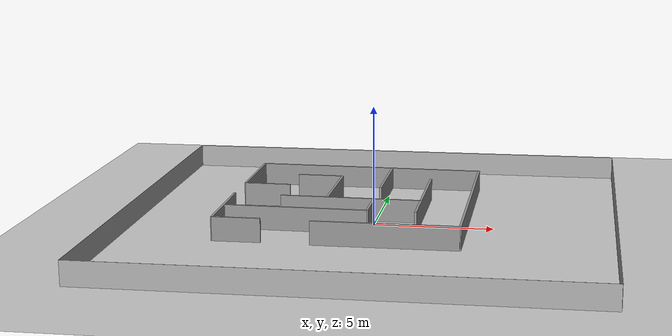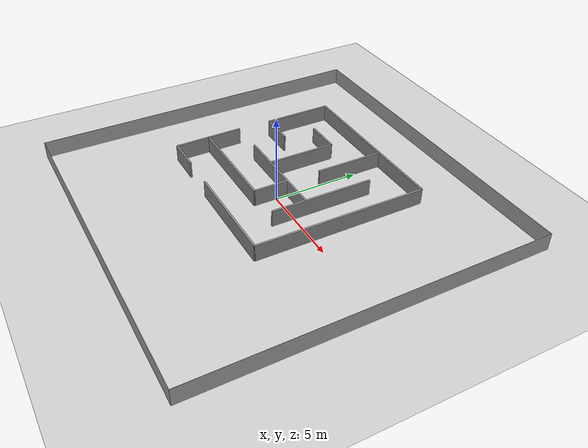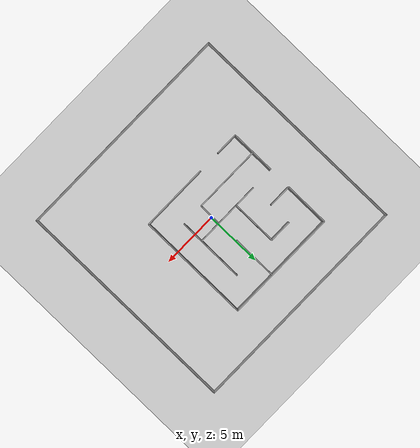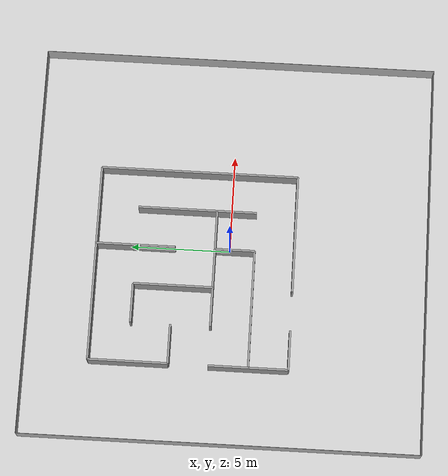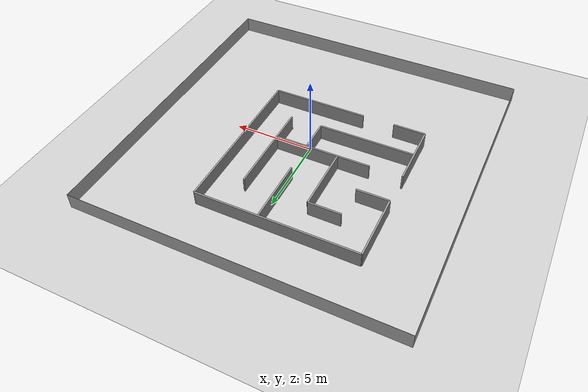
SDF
<sdf version="1.10">
 <world name="default">
  <physics type="ode">
   <max_step_size>0.0040000000000000001</max_step_size>
   <real_time_factor>1</real_time_factor>
   <real_time_update_rate>250</real_time_update_rate>
  </physics>
  <plugin name="gz::sim::systems::Physics" filename="gz-sim-physics-system"/>
  <plugin name="gz::sim::systems::UserCommands" filename="gz-sim-user-commands-system"/>
  <plugin name="gz::sim::systems::SceneBroadcaster" filename="gz-sim-scene-broadcaster-system"/>
  <plugin name="gz::sim::systems::Contact" filename="gz-sim-contact-system"/>
  <plugin name="gz::sim::systems::Imu" filename="gz-sim-imu-system"/>
  <plugin name="gz::sim::systems::Magnetometer" filename="gz-sim-magnetometer-system"/>
  <plugin name="gz::sim::systems::Altimeter" filename="gz-sim-altimeter-system"/>
  <plugin name="gz::sim::systems::NavSat" filename="gz-sim-navsat-system"/>
  <plugin name="gz::sim::systems::Sensors" filename="gz-sim-sensors-system">
   <render_engine>ogre2</render_engine>
  </plugin>
  <gravity>0 0 -9.8000000000000007</gravity>
  <magnetic_field>6.0000000000000002e-06 2.3e-05 -4.1999999999999998e-05</magnetic_field>
  <atmosphere type="adiabatic"/>
  <spherical_coordinates>
   <surface_model>EARTH_WGS84</surface_model>
   <latitude_deg>39.79480109851339</latitude_deg>
   <longitude_deg>-84.08631702793322</longitude_deg>
   <elevation>265.2</elevation>
   <heading_deg>0</heading_deg>
  </spherical_coordinates>
  <scene>
   <grid>true</grid>
   <ambient>0.400000006 0.400000006 0.400000006 1</ambient>
   <background>0.699999988 0.699999988 0.699999988 1</background>
   <shadows>false</shadows>
  </scene>
  <light name="sunUTC" type="directional">
   <pose>0 0 500 0 0 0</pose>
   <cast_shadows>false</cast_shadows>
   <intensity>1</intensity>
   <direction>0.001 0.625 -0.78000000000000003</direction>
   <diffuse>0.903999984 0.903999984 0.903999984 1</diffuse>
   <specular>0.270999998 0.270999998 0.270999998 1</specular>
   <attenuation><range>2000</range><linear>0</linear><constant>1</constant><quadratic>0</quadratic></attenuation>
   <spot><inner_angle>0</inner_angle><outer_angle>0</outer_angle><falloff>0</falloff></spot>
  </light>
  <model name="ground_plane">
   <static>true</static>
   <link name="link">
    <collision name="collision">
     <geometry><plane><normal>0 0 1</normal><size>1 1</size></plane></geometry>
    </collision>
    <visual name="visual">
     <geometry><plane><normal>0 0 1</normal><size>100 100</size></plane></geometry>
     <material>
      <ambient>0.800000012 0.800000012 0.800000012 1</ambient>
      <diffuse>0.800000012 0.800000012 0.800000012 1</diffuse>
      <specular>0.800000012 0.800000012 0.800000012 1</specular>
     </material>
    </visual>
    <inertial>
     <mass>1</mass>
     <inertia><ixx>1</ixx><ixy>0</ixy><ixz>0</ixz><iyy>1</iyy><iyz>0</iyz><izz>1</izz></inertia>
    </inertial>
   </link>
  </model>
  <model name="wall_1">
   <pose>-10 0 .5 0 0 -1.57</pose>
   <static>true</static>
   <link name="link">
    <collision name="collision"><geometry><box><size>20 .01 1</size></box></geometry></collision>
    <visual name="visual">
     <geometry><box><size>20 .01 1</size></box></geometry>
     <material>
      <ambient>0.7 0.7 0.7 1</ambient>
      <diffuse>0.7 0.7 0.7 1</diffuse>
      <specular>0.7 0.7 0.7 1</specular>
     </material>
    </visual>
    <inertial>
     <mass>1</mass>
     <inertia><ixx>1</ixx><ixy>0</ixy><ixz>0</ixz><iyy>1</iyy><iyz>0</iyz><izz>1</izz></inertia>
    </inertial>
   </link>
  </model>
  <model name="wall_2">
   <pose>10 0 .5 0 0 -1.57</pose>
   <static>true</static>
   <link name="link">
    <collision name="collision"><geometry><box><size>20 .01 1</size></box></geometry></collision>
    <visual name="visual">
     <geometry><box><size>20 .01 1</size></box></geometry>
     <material>
      <ambient>0.7 0.7 0.7 1</ambient>
      <diffuse>0.7 0.7 0.7 1</diffuse>
      <specular>0.7 0.7 0.7 1</specular>
     </material>
    </visual>
    <inertial>
     <mass>1</mass>
     <inertia><ixx>1</ixx><ixy>0</ixy><ixz>0</ixz><iyy>1</iyy><iyz>0</iyz><izz>1</izz></inertia>
    </inertial>
   </link>
  </model>
  <model name="wall_3">
   <pose>0 10 .5 0 0 0</pose>
   <static>true</static>
   <link name="link">
    <collision name="collision"><geometry><box><size>20 .01 1</size></box></geometry></collision>
    <visual name="visual">
     <geometry><box><size>20 .01 1</size></box></geometry>
     <material>
      <ambient>0.7 0.7 0.7 1</ambient>
      <diffuse>0.7 0.7 0.7 1</diffuse>
      <specular>0.7 0.7 0.7 1</specular>
     </material>
    </visual>
    <inertial>
     <mass>1</mass>
     <inertia><ixx>1</ixx><ixy>0</ixy><ixz>0</ixz><iyy>1</iyy><iyz>0</iyz><izz>1</izz></inertia>
    </inertial>
   </link>
  </model>
  <model name="wall_4">
   <pose>0 -10 .5 0 0 0</pose>
   <static>true</static>
   <link name="link">
    <collision name="collision"><geometry><box><size>20 .01 1</size></box></geometry></collision>
    <visual name="visual">
     <geometry><box><size>20 .01 1</size></box></geometry>
     <material>
      <ambient>0.7 0.7 0.7 1</ambient>
      <diffuse>0.7 0.7 0.7 1</diffuse>
      <specular>0.7 0.7 0.7 1</specular>
     </material>
    </visual>
    <inertial>
     <mass>1</mass>
     <inertia><ixx>1</ixx><ixy>0</ixy><ixz>0</ixz><iyy>1</iyy><iyz>0</iyz><izz>1</izz></inertia>
    </inertial>
   </link>
  </model>
  <model name="s_maze">
   <link name="link_0_clone">
    <inertial>
     <mass>2000</mass>
     <inertia><ixx>16833.3</ixx><ixy>0</ixy><ixz>0</ixz><iyy>168.333</iyy><iyz>0</iyz><izz>16668.3</izz></inertia>
    </inertial>
    <pose>5 0 0 0 -0 0</pose>
    <visual name="visual">
     <geometry><box><size>0.1 10 1</size></box></geometry>
     <material>
      <lighting>1</lighting>
      <script><uri>file://media/materials/scripts/gazebo.material</uri><name>Gazebo/Grey</name></script>
      <shader type="vertex"><normal_map>__default__</normal_map></shader>
      <ambient>0.3 0.3 0.3 1</ambient>
      <diffuse>0.7 0.7 0.7 1</diffuse>
      <specular>0.01 0.01 0.01 1</specular>
      <emissive>0 0 0 1</emissive>
     </material>
    </visual>
    <collision name="collision">
     <geometry><box><size>0.1 10 1</size></box></geometry>
     <surface>
      <friction>
       <ode><mu>1</mu><mu2>1</mu2><fdir1>0 0 0</fdir1><slip1>0</slip1><slip2>0</slip2></ode>
       <torsional>
        <coefficient>1</coefficient>
        <patch_radius>0</patch_radius>
        <surface_radius>0</surface_radius>
        <use_patch_radius>1</use_patch_radius>
        <ode><slip>0</slip></ode>
       </torsional>
      </friction>
      <bounce><restitution_coefficient>0</restitution_coefficient><threshold>1e+06</threshold></bounce>
      <contact>
       <collide_without_contact>0</collide_without_contact>
       <collide_without_contact_bitmask>1</collide_without_contact_bitmask>
       <collide_bitmask>1</collide_bitmask>
       <ode>
        <soft_cfm>0</soft_cfm>
        <soft_erp>0.2</soft_erp>
        <kp>1e+13</kp>
        <kd>1</kd>
        <max_vel>0.01</max_vel>
        <min_depth>0</min_depth>
       </ode>
       <bullet>
        <split_impulse>1</split_impulse>
        <split_impulse_penetration_threshold>-0.01</split_impulse_penetration_threshold>
        <soft_cfm>0</soft_cfm>
        <soft_erp>0.2</soft_erp>
        <kp>1e+13</kp>
        <kd>1</kd>
       </bullet>
      </contact>
     </surface>
    </collision>
   </link>
   <link name="link_0_clone_0_clone">
    <inertial>
     <mass>400</mass>
     <inertia><ixx>166.667</ixx><ixy>0</ixy><ixz>0</ixz><iyy>33.6667</iyy><iyz>0</iyz><izz>133.667</izz></inertia>
    </inertial>
    <pose>1 -2 -0 0 -0 0</pose>
    <visual name="visual">
     <geometry><box><size>0.1 2 1</size></box></geometry>
     <material>
      <lighting>1</lighting>
      <script><uri>file://media/materials/scripts/gazebo.material</uri><name>Gazebo/Grey</name></script>
      <shader type="vertex"><normal_map>__default__</normal_map></shader>
      <ambient>0.3 0.3 0.3 1</ambient>
      <diffuse>0.7 0.7 0.7 1</diffuse>
      <specular>0.01 0.01 0.01 1</specular>
      <emissive>0 0 0 1</emissive>
     </material>
    </visual>
    <collision name="collision">
     <geometry><box><size>0.1 2 1</size></box></geometry>
     <surface>
      <friction>
       <ode><mu>1</mu><mu2>1</mu2><fdir1>0 0 0</fdir1><slip1>0</slip1><slip2>0</slip2></ode>
       <torsional>
        <coefficient>1</coefficient>
        <patch_radius>0</patch_radius>
        <surface_radius>0</surface_radius>
        <use_patch_radius>1</use_patch_radius>
        <ode><slip>0</slip></ode>
       </torsional>
      </friction>
      <bounce><restitution_coefficient>0</restitution_coefficient><threshold>1e+06</threshold></bounce>
      <contact>
       <collide_without_contact>0</collide_without_contact>
       <collide_without_contact_bitmask>1</collide_without_contact_bitmask>
       <collide_bitmask>1</collide_bitmask>
       <ode>
        <soft_cfm>0</soft_cfm>
        <soft_erp>0.2</soft_erp>
        <kp>1e+13</kp>
        <kd>1</kd>
        <max_vel>0.01</max_vel>
        <min_depth>0</min_depth>
       </ode>
       <bullet>
        <split_impulse>1</split_impulse>
        <split_impulse_penetration_threshold>-0.01</split_impulse_penetration_threshold>
        <soft_cfm>0</soft_cfm>
        <soft_erp>0.2</soft_erp>
        <kp>1e+13</kp>
        <kd>1</kd>
       </bullet>
      </contact>
     </surface>
    </collision>
   </link>
   <link name="link_0_clone_1_clone">
    <inertial>
     <mass>2000</mass>
     <inertia><ixx>16833.3</ixx><ixy>0</ixy><ixz>0</ixz><iyy>168.333</iyy><iyz>0</iyz><izz>16668.3</izz></inertia>
    </inertial>
    <pose>-0 5 -0 0 -0 1.5708</pose>
    <visual name="visual">
     <geometry><box><size>0.1 10 1</size></box></geometry>
     <material>
      <lighting>1</lighting>
      <script><uri>file://media/materials/scripts/gazebo.material</uri><name>Gazebo/Grey</name></script>
      <shader type="vertex"><normal_map>__default__</normal_map></shader>
      <ambient>0.3 0.3 0.3 1</ambient>
      <diffuse>0.7 0.7 0.7 1</diffuse>
      <specular>0.01 0.01 0.01 1</specular>
      <emissive>0 0 0 1</emissive>
     </material>
    </visual>
    <collision name="collision">
     <geometry><box><size>0.1 10 1</size></box></geometry>
     <surface>
      <friction>
       <ode><mu>1</mu><mu2>1</mu2><fdir1>0 0 0</fdir1><slip1>0</slip1><slip2>0</slip2></ode>
       <torsional>
        <coefficient>1</coefficient>
        <patch_radius>0</patch_radius>
        <surface_radius>0</surface_radius>
        <use_patch_radius>1</use_patch_radius>
        <ode><slip>0</slip></ode>
       </torsional>
      </friction>
      <bounce><restitution_coefficient>0</restitution_coefficient><threshold>1e+06</threshold></bounce>
      <contact>
       <collide_without_contact>0</collide_without_contact>
       <collide_without_contact_bitmask>1</collide_without_contact_bitmask>
       <collide_bitmask>1</collide_bitmask>
       <ode>
        <soft_cfm>0</soft_cfm>
        <soft_erp>0.2</soft_erp>
        <kp>1e+13</kp>
        <kd>1</kd>
        <max_vel>0.01</max_vel>
        <min_depth>0</min_depth>
       </ode>
       <bullet>
        <split_impulse>1</split_impulse>
        <split_impulse_penetration_threshold>-0.01</split_impulse_penetration_threshold>
        <soft_cfm>0</soft_cfm>
        <soft_erp>0.2</soft_erp>
        <kp>1e+13</kp>
        <kd>1</kd>
       </bullet>
      </contact>
     </surface>
    </collision>
   </link>
   <link name="link_0_clone_1_clone_0">
    <inertial>
     <mass>1200</mass>
     <inertia><ixx>3700</ixx><ixy>0</ixy><ixz>0</ixz><iyy>101</iyy><iyz>0</iyz><izz>3601</izz></inertia>
    </inertial>
    <pose>-2 -3 -0 0 -0 1.5708</pose>
    <visual name="visual">
     <geometry><box><size>0.1 6 1</size></box></geometry>
     <material>
      <lighting>1</lighting>
      <script><uri>file://media/materials/scripts/gazebo.material</uri><name>Gazebo/Grey</name></script>
      <shader type="vertex"><normal_map>__default__</normal_map></shader>
      <ambient>0.3 0.3 0.3 1</ambient>
      <diffuse>0.7 0.7 0.7 1</diffuse>
      <specular>0.01 0.01 0.01 1</specular>
      <emissive>0 0 0 1</emissive>
     </material>
    </visual>
    <collision name="collision">
     <geometry><box><size>0.1 6 1</size></box></geometry>
     <surface>
      <friction>
       <ode><mu>1</mu><mu2>1</mu2><fdir1>0 0 0</fdir1><slip1>0</slip1><slip2>0</slip2></ode>
       <torsional>
        <coefficient>1</coefficient>
        <patch_radius>0</patch_radius>
        <surface_radius>0</surface_radius>
        <use_patch_radius>1</use_patch_radius>
        <ode><slip>0</slip></ode>
       </torsional>
      </friction>
      <bounce><restitution_coefficient>0</restitution_coefficient><threshold>1e+06</threshold></bounce>
      <contact>
       <collide_without_contact>0</collide_without_contact>
       <collide_without_contact_bitmask>1</collide_without_contact_bitmask>
       <collide_bitmask>1</collide_bitmask>
       <ode>
        <soft_cfm>0</soft_cfm>
        <soft_erp>0.2</soft_erp>
        <kp>1e+13</kp>
        <kd>1</kd>
        <max_vel>0.01</max_vel>
        <min_depth>0</min_depth>
       </ode>
       <bullet>
        <split_impulse>1</split_impulse>
        <split_impulse_penetration_threshold>-0.01</split_impulse_penetration_threshold>
        <soft_cfm>0</soft_cfm>
        <soft_erp>0.2</soft_erp>
        <kp>1e+13</kp>
        <kd>1</kd>
       </bullet>
      </contact>
     </surface>
    </collision>
   </link>
   <link name="link_0_clone_1_clone_0_clone">
    <inertial>
     <mass>1200</mass>
     <inertia><ixx>3700</ixx><ixy>0</ixy><ixz>0</ixz><iyy>101</iyy><iyz>0</iyz><izz>3601</izz></inertia>
    </inertial>
    <pose>-0 -1 0 0 -0 1.5708</pose>
    <visual name="visual">
     <geometry><box><size>0.1 6 1</size></box></geometry>
     <material>
      <lighting>1</lighting>
      <script><uri>file://media/materials/scripts/gazebo.material</uri><name>Gazebo/Grey</name></script>
      <shader type="vertex"><normal_map>__default__</normal_map></shader>
      <ambient>0.3 0.3 0.3 1</ambient>
      <diffuse>0.7 0.7 0.7 1</diffuse>
      <specular>0.01 0.01 0.01 1</specular>
      <emissive>0 0 0 1</emissive>
     </material>
    </visual>
    <collision name="collision">
     <geometry><box><size>0.1 6 1</size></box></geometry>
     <surface>
      <friction>
       <ode><mu>1</mu><mu2>1</mu2><fdir1>0 0 0</fdir1><slip1>0</slip1><slip2>0</slip2></ode>
       <torsional>
        <coefficient>1</coefficient>
        <patch_radius>0</patch_radius>
        <surface_radius>0</surface_radius>
        <use_patch_radius>1</use_patch_radius>
        <ode><slip>0</slip></ode>
       </torsional>
      </friction>
      <bounce><restitution_coefficient>0</restitution_coefficient><threshold>1e+06</threshold></bounce>
      <contact>
       <collide_without_contact>0</collide_without_contact>
       <collide_without_contact_bitmask>1</collide_without_contact_bitmask>
       <collide_bitmask>1</collide_bitmask>
       <ode>
        <soft_cfm>0</soft_cfm>
        <soft_erp>0.2</soft_erp>
        <kp>1e+13</kp>
        <kd>1</kd>
        <max_vel>0.01</max_vel>
        <min_depth>0</min_depth>
       </ode>
       <bullet>
        <split_impulse>1</split_impulse>
        <split_impulse_penetration_threshold>-0.01</split_impulse_penetration_threshold>
        <soft_cfm>0</soft_cfm>
        <soft_erp>0.2</soft_erp>
        <kp>1e+13</kp>
        <kd>1</kd>
       </bullet>
      </contact>
     </surface>
    </collision>
   </link>
   <link name="link_0_clone_1_clone_0_clone_0">
    <inertial>
     <mass>1200</mass>
     <inertia><ixx>3700</ixx><ixy>0</ixy><ixz>0</ixz><iyy>101</iyy><iyz>0</iyz><izz>3601</izz></inertia>
    </inertial>
    <pose>2 -5 0 -0.004588 -0.005224 1.5715</pose>
    <visual name="visual">
     <geometry><box><size>0.1 6 1</size></box></geometry>
     <material>
      <lighting>1</lighting>
      <script><uri>file://media/materials/scripts/gazebo.material</uri><name>Gazebo/Grey</name></script>
      <shader type="vertex"><normal_map>__default__</normal_map></shader>
      <ambient>0.3 0.3 0.3 1</ambient>
      <diffuse>0.7 0.7 0.7 1</diffuse>
      <specular>0.01 0.01 0.01 1</specular>
      <emissive>0 0 0 1</emissive>
     </material>
    </visual>
    <collision name="collision">
     <geometry><box><size>0.1 6 1</size></box></geometry>
     <surface>
      <friction>
       <ode><mu>1</mu><mu2>1</mu2><fdir1>0 0 0</fdir1><slip1>0</slip1><slip2>0</slip2></ode>
       <torsional>
        <coefficient>1</coefficient>
        <patch_radius>0</patch_radius>
        <surface_radius>0</surface_radius>
        <use_patch_radius>1</use_patch_radius>
        <ode><slip>0</slip></ode>
       </torsional>
      </friction>
      <bounce><restitution_coefficient>0</restitution_coefficient><threshold>1e+06</threshold></bounce>
      <contact>
       <collide_without_contact>0</collide_without_contact>
       <collide_without_contact_bitmask>1</collide_without_contact_bitmask>
       <collide_bitmask>1</collide_bitmask>
       <ode>
        <soft_cfm>0</soft_cfm>
        <soft_erp>0.2</soft_erp>
        <kp>1e+13</kp>
        <kd>1</kd>
        <max_vel>0.01</max_vel>
        <min_depth>0</min_depth>
       </ode>
       <bullet>
        <split_impulse>1</split_impulse>
        <split_impulse_penetration_threshold>-0.01</split_impulse_penetration_threshold>
        <soft_cfm>0</soft_cfm>
        <soft_erp>0.2</soft_erp>
        <kp>1e+13</kp>
        <kd>1</kd>
       </bullet>
      </contact>
     </surface>
    </collision>
   </link>
   <link name="link_0_clone_1_clone_0_clone_clone">
    <inertial>
     <mass>400</mass>
     <inertia><ixx>166.667</ixx><ixy>0</ixy><ixz>0</ixz><iyy>33.6667</iyy><iyz>0</iyz><izz>133.667</izz></inertia>
    </inertial>
    <pose>-2 3 -0 0 -0 1.5708</pose>
    <visual name="visual">
     <geometry><box><size>0.1 2 1</size></box></geometry>
     <material>
      <lighting>1</lighting>
      <script><uri>file://media/materials/scripts/gazebo.material</uri><name>Gazebo/Grey</name></script>
      <shader type="vertex"><normal_map>__default__</normal_map></shader>
      <ambient>0.3 0.3 0.3 1</ambient>
      <diffuse>0.7 0.7 0.7 1</diffuse>
      <specular>0.01 0.01 0.01 1</specular>
      <emissive>0 0 0 1</emissive>
     </material>
    </visual>
    <collision name="collision">
     <geometry><box><size>0.1 2 1</size></box></geometry>
     <surface>
      <friction>
       <ode><mu>1</mu><mu2>1</mu2><fdir1>0 0 0</fdir1><slip1>0</slip1><slip2>0</slip2></ode>
       <torsional>
        <coefficient>1</coefficient>
        <patch_radius>0</patch_radius>
        <surface_radius>0</surface_radius>
        <use_patch_radius>1</use_patch_radius>
        <ode><slip>0</slip></ode>
       </torsional>
      </friction>
      <bounce><restitution_coefficient>0</restitution_coefficient><threshold>1e+06</threshold></bounce>
      <contact>
       <collide_without_contact>0</collide_without_contact>
       <collide_without_contact_bitmask>1</collide_without_contact_bitmask>
       <collide_bitmask>1</collide_bitmask>
       <ode>
        <soft_cfm>0</soft_cfm>
        <soft_erp>0.2</soft_erp>
        <kp>1e+13</kp>
        <kd>1</kd>
        <max_vel>0.01</max_vel>
        <min_depth>0</min_depth>
       </ode>
       <bullet>
        <split_impulse>1</split_impulse>
        <split_impulse_penetration_threshold>-0.01</split_impulse_penetration_threshold>
        <soft_cfm>0</soft_cfm>
        <soft_erp>0.2</soft_erp>
        <kp>1e+13</kp>
        <kd>1</kd>
       </bullet>
      </contact>
     </surface>
    </collision>
   </link>
   <link name="link_0_clone_1_clone_0_clone_clone_clone">
    <inertial>
     <mass>400</mass>
     <inertia><ixx>166.667</ixx><ixy>0</ixy><ixz>0</ixz><iyy>33.6667</iyy><iyz>0</iyz><izz>133.667</izz></inertia>
    </inertial>
    <pose>-4 1 0 0 -0 1.5708</pose>
    <visual name="visual">
     <geometry><box><size>0.1 2 1</size></box></geometry>
     <material>
      <lighting>1</lighting>
      <script><uri>file://media/materials/scripts/gazebo.material</uri><name>Gazebo/Grey</name></script>
      <shader type="vertex"><normal_map>__default__</normal_map></shader>
      <ambient>0.3 0.3 0.3 1</ambient>
      <diffuse>0.7 0.7 0.7 1</diffuse>
      <specular>0.01 0.01 0.01 1</specular>
      <emissive>0 0 0 1</emissive>
     </material>
    </visual>
    <collision name="collision">
     <geometry><box><size>0.1 2 1</size></box></geometry>
     <surface>
      <friction>
       <ode><mu>1</mu><mu2>1</mu2><fdir1>0 0 0</fdir1><slip1>0</slip1><slip2>0</slip2></ode>
       <torsional>
        <coefficient>1</coefficient>
        <patch_radius>0</patch_radius>
        <surface_radius>0</surface_radius>
        <use_patch_radius>1</use_patch_radius>
        <ode><slip>0</slip></ode>
       </torsional>
      </friction>
      <bounce><restitution_coefficient>0</restitution_coefficient><threshold>1e+06</threshold></bounce>
      <contact>
       <collide_without_contact>0</collide_without_contact>
       <collide_without_contact_bitmask>1</collide_without_contact_bitmask>
       <collide_bitmask>1</collide_bitmask>
       <ode>
        <soft_cfm>0</soft_cfm>
        <soft_erp>0.2</soft_erp>
        <kp>1e+13</kp>
        <kd>1</kd>
        <max_vel>0.01</max_vel>
        <min_depth>0</min_depth>
       </ode>
       <bullet>
        <split_impulse>1</split_impulse>
        <split_impulse_penetration_threshold>-0.01</split_impulse_penetration_threshold>
        <soft_cfm>0</soft_cfm>
        <soft_erp>0.2</soft_erp>
        <kp>1e+13</kp>
        <kd>1</kd>
       </bullet>
      </contact>
     </surface>
    </collision>
   </link>
   <link name="link_0_clone_1_clone_0_clone_clone_clone_0">
    <inertial>
     <mass>400</mass>
     <inertia><ixx>166.667</ixx><ixy>0</ixy><ixz>0</ixz><iyy>33.6667</iyy><iyz>0</iyz><izz>133.667</izz></inertia>
    </inertial>
    <pose>-4 -5 -0 -0.004588 -0.005224 1.5715</pose>
    <visual name="visual">
     <geometry><box><size>0.1 2 1</size></box></geometry>
     <material>
      <lighting>1</lighting>
      <script><uri>file://media/materials/scripts/gazebo.material</uri><name>Gazebo/Grey</name></script>
      <shader type="vertex"><normal_map>__default__</normal_map></shader>
      <ambient>0.3 0.3 0.3 1</ambient>
      <diffuse>0.7 0.7 0.7 1</diffuse>
      <specular>0.01 0.01 0.01 1</specular>
      <emissive>0 0 0 1</emissive>
     </material>
    </visual>
    <collision name="collision">
     <geometry><box><size>0.1 2 1</size></box></geometry>
     <surface>
      <friction>
       <ode><mu>1</mu><mu2>1</mu2><fdir1>0 0 0</fdir1><slip1>0</slip1><slip2>0</slip2></ode>
       <torsional>
        <coefficient>1</coefficient>
        <patch_radius>0</patch_radius>
        <surface_radius>0</surface_radius>
        <use_patch_radius>1</use_patch_radius>
        <ode><slip>0</slip></ode>
       </torsional>
      </friction>
      <bounce><restitution_coefficient>0</restitution_coefficient><threshold>1e+06</threshold></bounce>
      <contact>
       <collide_without_contact>0</collide_without_contact>
       <collide_without_contact_bitmask>1</collide_without_contact_bitmask>
       <collide_bitmask>1</collide_bitmask>
       <ode>
        <soft_cfm>0</soft_cfm>
        <soft_erp>0.2</soft_erp>
        <kp>1e+13</kp>
        <kd>1</kd>
        <max_vel>0.01</max_vel>
        <min_depth>0</min_depth>
       </ode>
       <bullet>
        <split_impulse>1</split_impulse>
        <split_impulse_penetration_threshold>-0.01</split_impulse_penetration_threshold>
        <soft_cfm>0</soft_cfm>
        <soft_erp>0.2</soft_erp>
        <kp>1e+13</kp>
        <kd>1</kd>
       </bullet>
      </contact>
     </surface>
    </collision>
   </link>
   <link name="link_0_clone_2">
    <inertial>
     <mass>1200</mass>
     <inertia><ixx>3700</ixx><ixy>0</ixy><ixz>0</ixz><iyy>101</iyy><iyz>0</iyz><izz>3601</izz></inertia>
    </inertial>
    <pose>3 -0 -0 0 -0 0</pose>
    <visual name="visual">
     <geometry><box><size>0.1 6 1</size></box></geometry>
     <material>
      <lighting>1</lighting>
      <script><uri>file://media/materials/scripts/gazebo.material</uri><name>Gazebo/Grey</name></script>
      <shader type="vertex"><normal_map>__default__</normal_map></shader>
      <ambient>0.3 0.3 0.3 1</ambient>
      <diffuse>0.7 0.7 0.7 1</diffuse>
      <specular>0.01 0.01 0.01 1</specular>
      <emissive>0 0 0 1</emissive>
     </material>
    </visual>
    <collision name="collision">
     <geometry><box><size>0.1 6 1</size></box></geometry>
     <surface>
      <friction>
       <ode><mu>1</mu><mu2>1</mu2><fdir1>0 0 0</fdir1><slip1>0</slip1><slip2>0</slip2></ode>
       <torsional>
        <coefficient>1</coefficient>
        <patch_radius>0</patch_radius>
        <surface_radius>0</surface_radius>
        <use_patch_radius>1</use_patch_radius>
        <ode><slip>0</slip></ode>
       </torsional>
      </friction>
      <bounce><restitution_coefficient>0</restitution_coefficient><threshold>1e+06</threshold></bounce>
      <contact>
       <collide_without_contact>0</collide_without_contact>
       <collide_without_contact_bitmask>1</collide_without_contact_bitmask>
       <collide_bitmask>1</collide_bitmask>
       <ode>
        <soft_cfm>0</soft_cfm>
        <soft_erp>0.2</soft_erp>
        <kp>1e+13</kp>
        <kd>1</kd>
        <max_vel>0.01</max_vel>
        <min_depth>0</min_depth>
       </ode>
       <bullet>
        <split_impulse>1</split_impulse>
        <split_impulse_penetration_threshold>-0.01</split_impulse_penetration_threshold>
        <soft_cfm>0</soft_cfm>
        <soft_erp>0.2</soft_erp>
        <kp>1e+13</kp>
        <kd>1</kd>
       </bullet>
      </contact>
     </surface>
    </collision>
   </link>
   <link name="link_0_clone_2_clone">
    <inertial>
     <mass>0.188114</mass>
     <inertia>
      <ixx>0.0313523</ixx>
      <ixy>0</ixy>
      <ixz>0</ixz>
      <iyy>0.0162309</iyy>
      <iyz>0</iyz>
      <izz>0.0162309</izz>
     </inertia>
    </inertial>
    <pose>-1 1 0 0 -0 0</pose>
    <visual name="visual">
     <geometry><box><size>0.1 4 1</size></box></geometry>
     <material>
      <lighting>1</lighting>
      <script><uri>file://media/materials/scripts/gazebo.material</uri><name>Gazebo/Grey</name></script>
      <shader type="vertex"><normal_map>__default__</normal_map></shader>
      <ambient>0.3 0.3 0.3 1</ambient>
      <diffuse>0.7 0.7 0.7 1</diffuse>
      <specular>0.01 0.01 0.01 1</specular>
      <emissive>0 0 0 1</emissive>
     </material>
    </visual>
    <collision name="collision">
     <geometry><box><size>0.1 4 1</size></box></geometry>
     <surface>
      <friction>
       <ode><mu>1</mu><mu2>1</mu2><fdir1>0 0 0</fdir1><slip1>0</slip1><slip2>0</slip2></ode>
       <torsional>
        <coefficient>1</coefficient>
        <patch_radius>0</patch_radius>
        <surface_radius>0</surface_radius>
        <use_patch_radius>1</use_patch_radius>
        <ode><slip>0</slip></ode>
       </torsional>
      </friction>
      <bounce><restitution_coefficient>0</restitution_coefficient><threshold>1e+06</threshold></bounce>
      <contact>
       <collide_without_contact>0</collide_without_contact>
       <collide_without_contact_bitmask>1</collide_without_contact_bitmask>
       <collide_bitmask>1</collide_bitmask>
       <ode>
        <soft_cfm>0</soft_cfm>
        <soft_erp>0.2</soft_erp>
        <kp>1e+13</kp>
        <kd>1</kd>
        <max_vel>0.01</max_vel>
        <min_depth>0</min_depth>
       </ode>
       <bullet>
        <split_impulse>1</split_impulse>
        <split_impulse_penetration_threshold>-0.01</split_impulse_penetration_threshold>
        <soft_cfm>0</soft_cfm>
        <soft_erp>0.2</soft_erp>
        <kp>1e+13</kp>
        <kd>1</kd>
       </bullet>
      </contact>
     </surface>
    </collision>
   </link>
   <link name="link_0_clone_2_clone_clone">
    <inertial>
     <mass>800</mass>
     <inertia><ixx>1133.33</ixx><ixy>0</ixy><ixz>0</ixz><iyy>67.3333</iyy><iyz>0</iyz><izz>1067.33</izz></inertia>
    </inertial>
    <pose>1 3 -0 0 -0 0</pose>
    <visual name="visual">
     <geometry><box><size>0.1 4 1</size></box></geometry>
     <material>
      <lighting>1</lighting>
      <script><uri>file://media/materials/scripts/gazebo.material</uri><name>Gazebo/Grey</name></script>
      <shader type="vertex"><normal_map>__default__</normal_map></shader>
      <ambient>0.3 0.3 0.3 1</ambient>
      <diffuse>0.7 0.7 0.7 1</diffuse>
      <specular>0.01 0.01 0.01 1</specular>
      <emissive>0 0 0 1</emissive>
     </material>
    </visual>
    <collision name="collision">
     <geometry><box><size>0.1 4 1</size></box></geometry>
     <surface>
      <friction>
       <ode><mu>1</mu><mu2>1</mu2><fdir1>0 0 0</fdir1><slip1>0</slip1><slip2>0</slip2></ode>
       <torsional>
        <coefficient>1</coefficient>
        <patch_radius>0</patch_radius>
        <surface_radius>0</surface_radius>
        <use_patch_radius>1</use_patch_radius>
        <ode><slip>0</slip></ode>
       </torsional>
      </friction>
      <bounce><restitution_coefficient>0</restitution_coefficient><threshold>1e+06</threshold></bounce>
      <contact>
       <collide_without_contact>0</collide_without_contact>
       <collide_without_contact_bitmask>1</collide_without_contact_bitmask>
       <collide_bitmask>1</collide_bitmask>
       <ode>
        <soft_cfm>0</soft_cfm>
        <soft_erp>0.2</soft_erp>
        <kp>1e+13</kp>
        <kd>1</kd>
        <max_vel>0.01</max_vel>
        <min_depth>0</min_depth>
       </ode>
       <bullet>
        <split_impulse>1</split_impulse>
        <split_impulse_penetration_threshold>-0.01</split_impulse_penetration_threshold>
        <soft_cfm>0</soft_cfm>
        <soft_erp>0.2</soft_erp>
        <kp>1e+13</kp>
        <kd>1</kd>
       </bullet>
      </contact>
     </surface>
    </collision>
   </link>
   <link name="link_0_clone_2_clone_clone_0">
    <inertial>
     <mass>800</mass>
     <inertia><ixx>1133.33</ixx><ixy>0</ixy><ixz>0</ixz><iyy>67.3333</iyy><iyz>0</iyz><izz>1067.33</izz></inertia>
    </inertial>
    <pose>-5 3 -0 0.005224 -0.004588 0.000681</pose>
    <visual name="visual">
     <geometry><box><size>0.1 4 1</size></box></geometry>
     <material>
      <lighting>1</lighting>
      <script><uri>file://media/materials/scripts/gazebo.material</uri><name>Gazebo/Grey</name></script>
      <shader type="vertex"><normal_map>__default__</normal_map></shader>
      <ambient>0.3 0.3 0.3 1</ambient>
      <diffuse>0.7 0.7 0.7 1</diffuse>
      <specular>0.01 0.01 0.01 1</specular>
      <emissive>0 0 0 1</emissive>
     </material>
    </visual>
    <collision name="collision">
     <geometry><box><size>0.1 4 1</size></box></geometry>
     <surface>
      <friction>
       <ode><mu>1</mu><mu2>1</mu2><fdir1>0 0 0</fdir1><slip1>0</slip1><slip2>0</slip2></ode>
       <torsional>
        <coefficient>1</coefficient>
        <patch_radius>0</patch_radius>
        <surface_radius>0</surface_radius>
        <use_patch_radius>1</use_patch_radius>
        <ode><slip>0</slip></ode>
       </torsional>
      </friction>
      <bounce><restitution_coefficient>0</restitution_coefficient><threshold>1e+06</threshold></bounce>
      <contact>
       <collide_without_contact>0</collide_without_contact>
       <collide_without_contact_bitmask>1</collide_without_contact_bitmask>
       <collide_bitmask>1</collide_bitmask>
       <ode>
        <soft_cfm>0</soft_cfm>
        <soft_erp>0.2</soft_erp>
        <kp>1e+13</kp>
        <kd>1</kd>
        <max_vel>0.01</max_vel>
        <min_depth>0</min_depth>
       </ode>
       <bullet>
        <split_impulse>1</split_impulse>
        <split_impulse_penetration_threshold>-0.01</split_impulse_penetration_threshold>
        <soft_cfm>0</soft_cfm>
        <soft_erp>0.2</soft_erp>
        <kp>1e+13</kp>
        <kd>1</kd>
       </bullet>
      </contact>
     </surface>
    </collision>
   </link>
   <link name="link_0_clone_2_clone_clone_0_clone">
    <inertial>
     <mass>800</mass>
     <inertia><ixx>1133.33</ixx><ixy>0</ixy><ixz>0</ixz><iyy>67.3333</iyy><iyz>0</iyz><izz>1067.33</izz></inertia>
    </inertial>
    <pose>-5 -3 -0 0.010445 -0.009179 0.001338</pose>
    <visual name="visual">
     <geometry><box><size>0.1 4 1</size></box></geometry>
     <material>
      <lighting>1</lighting>
      <script><uri>file://media/materials/scripts/gazebo.material</uri><name>Gazebo/Grey</name></script>
      <shader type="vertex"><normal_map>__default__</normal_map></shader>
      <ambient>0.3 0.3 0.3 1</ambient>
      <diffuse>0.7 0.7 0.7 1</diffuse>
      <specular>0.01 0.01 0.01 1</specular>
      <emissive>0 0 0 1</emissive>
     </material>
    </visual>
    <collision name="collision">
     <geometry><box><size>0.1 4 1</size></box></geometry>
     <surface>
      <friction>
       <ode><mu>1</mu><mu2>1</mu2><fdir1>0 0 0</fdir1><slip1>0</slip1><slip2>0</slip2></ode>
       <torsional>
        <coefficient>1</coefficient>
        <patch_radius>0</patch_radius>
        <surface_radius>0</surface_radius>
        <use_patch_radius>1</use_patch_radius>
        <ode><slip>0</slip></ode>
       </torsional>
      </friction>
      <bounce><restitution_coefficient>0</restitution_coefficient><threshold>1e+06</threshold></bounce>
      <contact>
       <collide_without_contact>0</collide_without_contact>
       <collide_without_contact_bitmask>1</collide_without_contact_bitmask>
       <collide_bitmask>1</collide_bitmask>
       <ode>
        <soft_cfm>0</soft_cfm>
        <soft_erp>0.2</soft_erp>
        <kp>1e+13</kp>
        <kd>1</kd>
        <max_vel>0.01</max_vel>
        <min_depth>0</min_depth>
       </ode>
       <bullet>
        <split_impulse>1</split_impulse>
        <split_impulse_penetration_threshold>-0.01</split_impulse_penetration_threshold>
        <soft_cfm>0</soft_cfm>
        <soft_erp>0.2</soft_erp>
        <kp>1e+13</kp>
        <kd>1</kd>
       </bullet>
      </contact>
     </surface>
    </collision>
   </link>
   <static>0</static>
   <pose>-1.10426 1.73952 0.449513 -0.005227 0.004584 -0.000705</pose>
  </model>
 </world>
</sdf>
